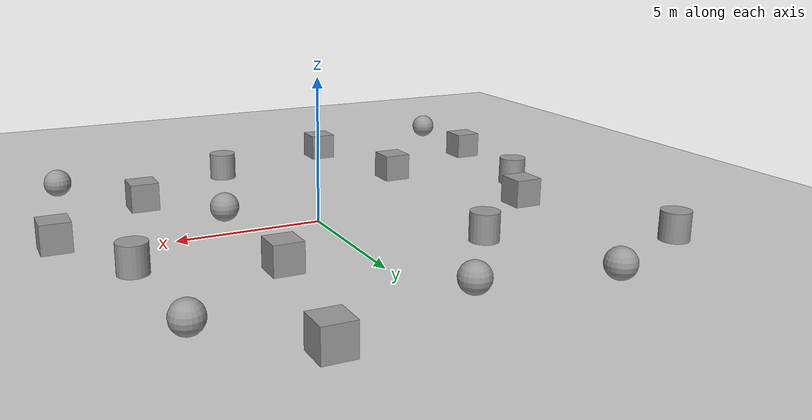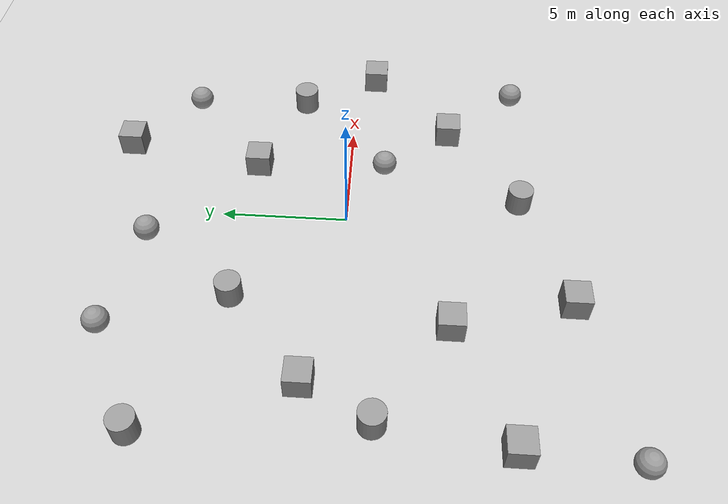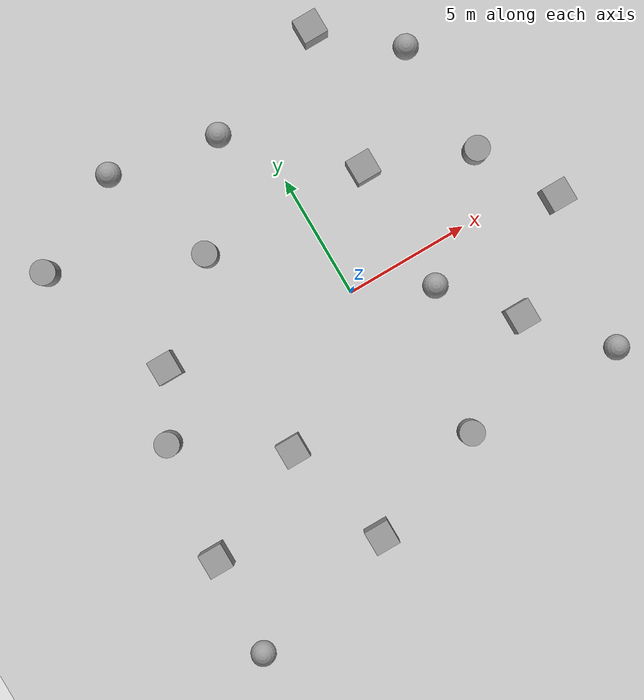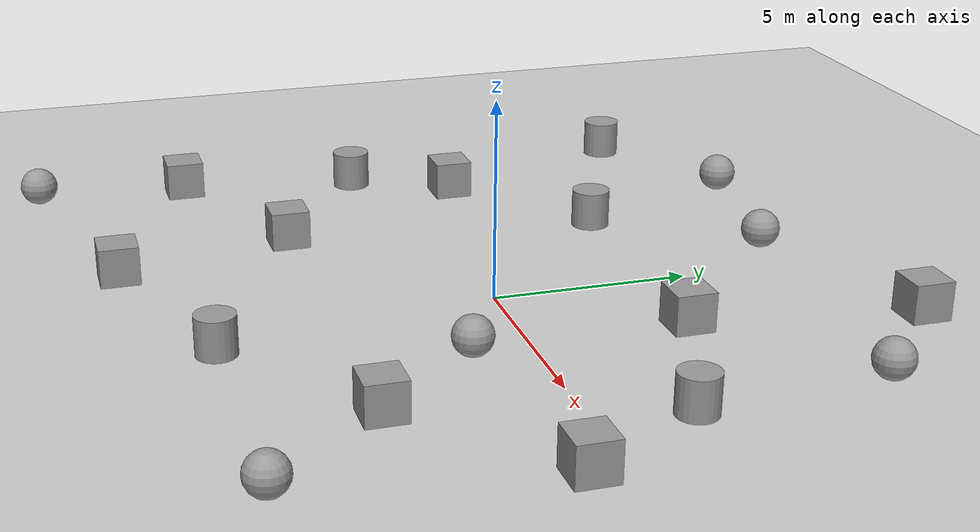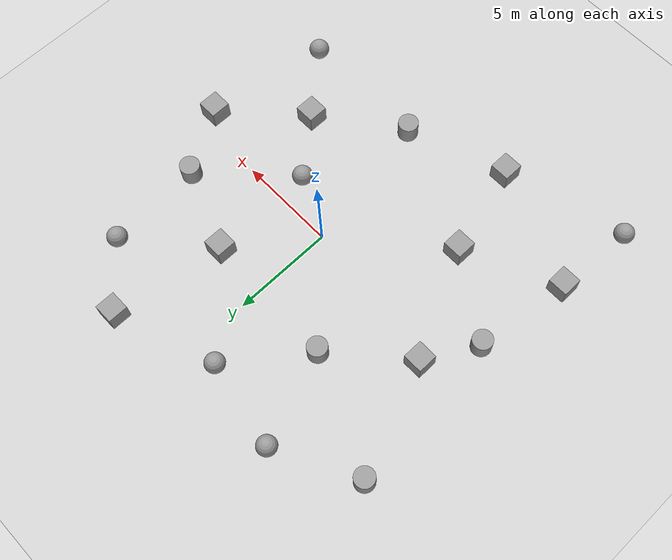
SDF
<sdf version="1.7">
 <world name="default">
  <light name="sun" type="directional">
   <pose>0 0 10 0 -0 0</pose>
   <diffuse>0.8 0.8 0.8 1</diffuse>
   <specular>0.2 0.2 0.2 1</specular>
   <attenuation>
    <range>1000</range>
    <constant>0.9</constant>
    <linear>0.01</linear>
    <quadratic>0.001</quadratic>
   </attenuation>
   <direction>-0.5 0.1 -0.9</direction>
   <spot><inner_angle>0</inner_angle><outer_angle>0</outer_angle><falloff>0</falloff></spot>
  </light>
  <model name="ground_plane">
   <static>1</static>
   <link name="link">
    <collision name="collision">
     <geometry><plane><normal>0 0 1</normal><size>100 100</size></plane></geometry>
     <surface>
      <contact><collide_bitmask>65535</collide_bitmask></contact>
      <friction><ode><mu>100</mu><mu2>50</mu2></ode></friction>
     </surface>
    </collision>
    <visual name="visual">
     <cast_shadows>0</cast_shadows>
     <geometry><plane><normal>0 0 1</normal><size>100 100</size></plane></geometry>
     <material>
      <script><uri>file://media/materials/scripts/gazebo.material</uri><name>Gazebo/Grey</name></script>
     </material>
    </visual>
   </link>
  </model>
  <gravity>0 0 -9.8</gravity>
  <magnetic_field>6e-06 2.3e-05 -4.2e-05</magnetic_field>
  <atmosphere type="adiabatic"/>
  <physics type="ode">
   <max_step_size>0.001</max_step_size>
   <real_time_factor>1</real_time_factor>
   <real_time_update_rate>1000</real_time_update_rate>
  </physics>
  <scene><ambient>0.4 0.4 0.4 1</ambient><background>0.7 0.7 0.7 1</background><shadows>1</shadows></scene>
  <spherical_coordinates>
   <surface_model>EARTH_WGS84</surface_model>
   <latitude_deg>0</latitude_deg>
   <longitude_deg>0</longitude_deg>
   <elevation>0</elevation>
   <heading_deg>0</heading_deg>
  </spherical_coordinates>
  <model name="unit_box">
   <pose>5.12368 -4.10428 0.499995 0 1e-05 0</pose>
   <link name="link">
    <inertial>
     <mass>1</mass>
     <inertia>
      <ixx>0.166667</ixx>
      <ixy>0</ixy>
      <ixz>0</ixz>
      <iyy>0.166667</iyy>
      <iyz>0</iyz>
      <izz>0.166667</izz>
     </inertia>
    </inertial>
    <collision name="collision"><geometry><box><size>1 1 1</size></box></geometry></collision>
    <visual name="visual">
     <geometry><box><size>1 1 1</size></box></geometry>
     <material>
      <script><name>Gazebo/Grey</name><uri>file://media/materials/scripts/gazebo.material</uri></script>
     </material>
    </visual>
   </link>
  </model>
  <model name="unit_sphere">
   <pose>2.8935 -1.42988 0.5 0 -0 0</pose>
   <link name="link">
    <inertial>
     <mass>1</mass>
     <inertia><ixx>0.1</ixx><ixy>0</ixy><ixz>0</ixz><iyy>0.1</iyy><iyz>0</iyz><izz>0.1</izz></inertia>
    </inertial>
    <collision name="collision"><geometry><sphere><radius>0.5</radius></sphere></geometry></collision>
    <visual name="visual">
     <geometry><sphere><radius>0.5</radius></sphere></geometry>
     <material>
      <script><name>Gazebo/Grey</name><uri>file://media/materials/scripts/gazebo.material</uri></script>
     </material>
    </visual>
   </link>
  </model>
  <model name="unit_cylinder">
   <pose>6.86294 2.24974 0.499998 3e-06 -2e-06 0</pose>
   <link name="link">
    <inertial>
     <mass>1</mass>
     <inertia><ixx>0.145833</ixx><ixy>0</ixy><ixz>0</ixz><iyy>0.145833</iyy><iyz>0</iyz><izz>0.125</izz></inertia>
    </inertial>
    <collision name="collision">
     <geometry><cylinder><radius>0.5</radius><length>1</length></cylinder></geometry>
    </collision>
    <visual name="visual">
     <geometry><cylinder><radius>0.5</radius><length>1</length></cylinder></geometry>
     <material>
      <script><name>Gazebo/Grey</name><uri>file://media/materials/scripts/gazebo.material</uri></script>
     </material>
    </visual>
   </link>
  </model>
  <model name="unit_box_0">
   <pose>2.78919 3.85486 0.499995 -1e-05 -0 -0</pose>
   <link name="link">
    <inertial>
     <mass>1</mass>
     <inertia>
      <ixx>0.166667</ixx>
      <ixy>0</ixy>
      <ixz>0</ixz>
      <iyy>0.166667</iyy>
      <iyz>0</iyz>
      <izz>0.166667</izz>
     </inertia>
    </inertial>
    <collision name="collision"><geometry><box><size>1 1 1</size></box></geometry></collision>
    <visual name="visual">
     <geometry><box><size>1 1 1</size></box></geometry>
     <material>
      <script><name>Gazebo/Grey</name><uri>file://media/materials/scripts/gazebo.material</uri></script>
     </material>
    </visual>
   </link>
  </model>
  <model name="unit_sphere_0">
   <pose>6.56146 7.02809 0.5 0 -0 0</pose>
   <link name="link">
    <inertial>
     <mass>1</mass>
     <inertia><ixx>0.1</ixx><ixy>0</ixy><ixz>0</ixz><iyy>0.1</iyy><iyz>0</iyz><izz>0.1</izz></inertia>
    </inertial>
    <collision name="collision"><geometry><sphere><radius>0.5</radius></sphere></geometry></collision>
    <visual name="visual">
     <geometry><sphere><radius>0.5</radius></sphere></geometry>
     <material>
      <script><name>Gazebo/Grey</name><uri>file://media/materials/scripts/gazebo.material</uri></script>
     </material>
    </visual>
   </link>
  </model>
  <model name="unit_cylinder_0">
   <pose>1.21272 -6.95882 0.499992 -3e-06 3e-06 0</pose>
   <link name="link">
    <inertial>
     <mass>1</mass>
     <inertia><ixx>0.145833</ixx><ixy>0</ixy><ixz>0</ixz><iyy>0.145833</iyy><iyz>0</iyz><izz>0.125</izz></inertia>
    </inertial>
    <collision name="collision">
     <geometry><cylinder><radius>0.5</radius><length>1</length></cylinder></geometry>
    </collision>
    <visual name="visual">
     <geometry><cylinder><radius>0.5</radius><length>1</length></cylinder></geometry>
     <material>
      <script><name>Gazebo/Grey</name><uri>file://media/materials/scripts/gazebo.material</uri></script>
     </material>
    </visual>
   </link>
  </model>
  <model name="unit_box_1">
   <pose>-5.00514 -4.10022 0.499995 0 1e-05 0</pose>
   <link name="link">
    <inertial>
     <mass>1</mass>
     <inertia>
      <ixx>0.166667</ixx>
      <ixy>0</ixy>
      <ixz>0</ixz>
      <iyy>0.166667</iyy>
      <iyz>0</iyz>
      <izz>0.166667</izz>
     </inertia>
    </inertial>
    <collision name="collision"><geometry><box><size>1 1 1</size></box></geometry></collision>
    <visual name="visual">
     <geometry><box><size>1 1 1</size></box></geometry>
     <material>
      <script><name>Gazebo/Grey</name><uri>file://media/materials/scripts/gazebo.material</uri></script>
     </material>
    </visual>
   </link>
  </model>
  <model name="unit_sphere_1">
   <pose>-1.33534 7.76214 0.5 0 -0 0</pose>
   <link name="link">
    <inertial>
     <mass>1</mass>
     <inertia><ixx>0.1</ixx><ixy>0</ixy><ixz>0</ixz><iyy>0.1</iyy><iyz>0</iyz><izz>0.1</izz></inertia>
    </inertial>
    <collision name="collision"><geometry><sphere><radius>0.5</radius></sphere></geometry></collision>
    <visual name="visual">
     <geometry><sphere><radius>0.5</radius></sphere></geometry>
     <material>
      <script><name>Gazebo/Grey</name><uri>file://media/materials/scripts/gazebo.material</uri></script>
     </material>
    </visual>
   </link>
  </model>
  <model name="unit_cylinder_1">
   <pose>-4.07776 4.05673 0.499998 3e-06 -3e-06 0</pose>
   <link name="link">
    <inertial>
     <mass>1</mass>
     <inertia><ixx>0.145833</ixx><ixy>0</ixy><ixz>0</ixz><iyy>0.145833</iyy><iyz>0</iyz><izz>0.125</izz></inertia>
    </inertial>
    <collision name="collision">
     <geometry><cylinder><radius>0.5</radius><length>1</length></cylinder></geometry>
    </collision>
    <visual name="visual">
     <geometry><cylinder><radius>0.5</radius><length>1</length></cylinder></geometry>
     <material>
      <script><name>Gazebo/Grey</name><uri>file://media/materials/scripts/gazebo.material</uri></script>
     </material>
    </visual>
   </link>
  </model>
  <model name="unit_box_2">
   <pose>-7.593 1.09693 0.499995 -1e-05 -0 -0</pose>
   <link name="link">
    <inertial>
     <mass>1</mass>
     <inertia>
      <ixx>0.166667</ixx>
      <ixy>0</ixy>
      <ixz>0</ixz>
      <iyy>0.166667</iyy>
      <iyz>0</iyz>
      <izz>0.166667</izz>
     </inertia>
    </inertial>
    <collision name="collision"><geometry><box><size>1 1 1</size></box></geometry></collision>
    <visual name="visual">
     <geometry><box><size>1 1 1</size></box></geometry>
     <material>
      <script><name>Gazebo/Grey</name><uri>file://media/materials/scripts/gazebo.material</uri></script>
     </material>
    </visual>
   </link>
  </model>
  <model name="unit_sphere_2">
   <pose>7.66444 -6.98556 0.5 0 -0 0</pose>
   <link name="link">
    <inertial>
     <mass>1</mass>
     <inertia><ixx>0.1</ixx><ixy>0</ixy><ixz>0</ixz><iyy>0.1</iyy><iyz>0</iyz><izz>0.1</izz></inertia>
    </inertial>
    <collision name="collision"><geometry><sphere><radius>0.5</radius></sphere></geometry></collision>
    <visual name="visual">
     <geometry><sphere><radius>0.5</radius></sphere></geometry>
     <material>
      <script><name>Gazebo/Grey</name><uri>file://media/materials/scripts/gazebo.material</uri></script>
     </material>
    </visual>
   </link>
  </model>
  <model name="unit_cylinder_2">
   <pose>-8.98943 -1.46029 0.499998 3e-06 -4e-06 0</pose>
   <link name="link">
    <inertial>
     <mass>1</mass>
     <inertia><ixx>0.145833</ixx><ixy>0</ixy><ixz>0</ixz><iyy>0.145833</iyy><iyz>0</iyz><izz>0.125</izz></inertia>
    </inertial>
    <collision name="collision">
     <geometry><cylinder><radius>0.5</radius><length>1</length></cylinder></geometry>
    </collision>
    <visual name="visual">
     <geometry><cylinder><radius>0.5</radius><length>1</length></cylinder></geometry>
     <material>
      <script><name>Gazebo/Grey</name><uri>file://media/materials/scripts/gazebo.material</uri></script>
     </material>
    </visual>
   </link>
  </model>
  <model name="unit_box_3">
   <pose>-3.75053 -8.64449 0.499995 0 1e-05 0</pose>
   <link name="link">
    <inertial>
     <mass>1</mass>
     <inertia>
      <ixx>0.166667</ixx>
      <ixy>0</ixy>
      <ixz>0</ixz>
      <iyy>0.166667</iyy>
      <iyz>0</iyz>
      <izz>0.166667</izz>
     </inertia>
    </inertial>
    <collision name="collision"><geometry><box><size>1 1 1</size></box></geometry></collision>
    <visual name="visual">
     <geometry><box><size>1 1 1</size></box></geometry>
     <material>
      <script><name>Gazebo/Grey</name><uri>file://media/materials/scripts/gazebo.material</uri></script>
     </material>
    </visual>
   </link>
  </model>
  <model name="unit_box_4">
   <pose>-9.63897 -6.20782 0.499995 -1e-05 -0 -0</pose>
   <link name="link">
    <inertial>
     <mass>1</mass>
     <inertia>
      <ixx>0.166667</ixx>
      <ixy>0</ixy>
      <ixz>0</ixz>
      <iyy>0.166667</iyy>
      <iyz>0</iyz>
      <izz>0.166667</izz>
     </inertia>
    </inertial>
    <collision name="collision"><geometry><box><size>1 1 1</size></box></geometry></collision>
    <visual name="visual">
     <geometry><box><size>1 1 1</size></box></geometry>
     <material>
      <script><name>Gazebo/Grey</name><uri>file://media/materials/scripts/gazebo.material</uri></script>
     </material>
    </visual>
   </link>
  </model>
  <model name="unit_sphere_3">
   <pose>-5.72689 8.58341 0.5 0 -0 0</pose>
   <link name="link">
    <inertial>
     <mass>1</mass>
     <inertia><ixx>0.1</ixx><ixy>0</ixy><ixz>0</ixz><iyy>0.1</iyy><iyz>0</iyz><izz>0.1</izz></inertia>
    </inertial>
    <collision name="collision"><geometry><sphere><radius>0.5</radius></sphere></geometry></collision>
    <visual name="visual">
     <geometry><sphere><radius>0.5</radius></sphere></geometry>
     <material>
      <script><name>Gazebo/Grey</name><uri>file://media/materials/scripts/gazebo.material</uri></script>
     </material>
    </visual>
   </link>
  </model>
  <model name="unit_box_5">
   <pose>8.64323 -0.836394 0.499995 -1e-05 -0 -0</pose>
   <link name="link">
    <inertial>
     <mass>1</mass>
     <inertia>
      <ixx>0.166667</ixx>
      <ixy>0</ixy>
      <ixz>0</ixz>
      <iyy>0.166667</iyy>
      <iyz>0</iyz>
      <izz>0.166667</izz>
     </inertia>
    </inertial>
    <collision name="collision"><geometry><box><size>1 1 1</size></box></geometry></collision>
    <visual name="visual">
     <geometry><box><size>1 1 1</size></box></geometry>
     <material>
      <script><name>Gazebo/Grey</name><uri>file://media/materials/scripts/gazebo.material</uri></script>
     </material>
    </visual>
   </link>
  </model>
  <model name="unit_box_6">
   <pose>3.74919 9.46584 0.499995 0 1e-05 0</pose>
   <link name="link">
    <inertial>
     <mass>1</mass>
     <inertia>
      <ixx>0.166667</ixx>
      <ixy>0</ixy>
      <ixz>0</ixz>
      <iyy>0.166667</iyy>
      <iyz>0</iyz>
      <izz>0.166667</izz>
     </inertia>
    </inertial>
    <collision name="collision"><geometry><box><size>1 1 1</size></box></geometry></collision>
    <visual name="visual">
     <geometry><box><size>1 1 1</size></box></geometry>
     <material>
      <script><name>Gazebo/Grey</name><uri>file://media/materials/scripts/gazebo.material</uri></script>
     </material>
    </visual>
   </link>
  </model>
  <model name="unit_sphere_4">
   <pose>-9.92754 -10.2208 0.5 0 -0 0</pose>
   <link name="link">
    <inertial>
     <mass>1</mass>
     <inertia><ixx>0.1</ixx><ixy>0</ixy><ixz>0</ixz><iyy>0.1</iyy><iyz>0</iyz><izz>0.1</izz></inertia>
    </inertial>
    <collision name="collision"><geometry><sphere><radius>0.5</radius></sphere></geometry></collision>
    <visual name="visual">
     <geometry><sphere><radius>0.5</radius></sphere></geometry>
     <material>
      <script><name>Gazebo/Grey</name><uri>file://media/materials/scripts/gazebo.material</uri></script>
     </material>
    </visual>
   </link>
  </model>
  <model name="unit_cylinder_3">
   <pose>-9.71611 6.56206 0.499997 3e-06 4e-06 -0</pose>
   <link name="link">
    <inertial>
     <mass>1</mass>
     <inertia><ixx>0.145833</ixx><ixy>0</ixy><ixz>0</ixz><iyy>0.145833</iyy><iyz>0</iyz><izz>0.125</izz></inertia>
    </inertial>
    <collision name="collision">
     <geometry><cylinder><radius>0.5</radius><length>1</length></cylinder></geometry>
    </collision>
    <visual name="visual">
     <geometry><cylinder><radius>0.5</radius><length>1</length></cylinder></geometry>
     <material>
      <script><name>Gazebo/Grey</name><uri>file://media/materials/scripts/gazebo.material</uri></script>
     </material>
    </visual>
   </link>
  </model>
 </world>
</sdf>
